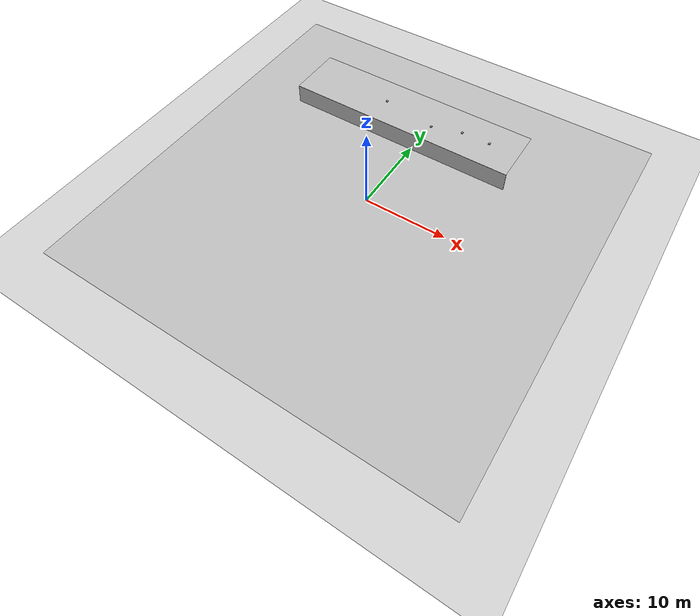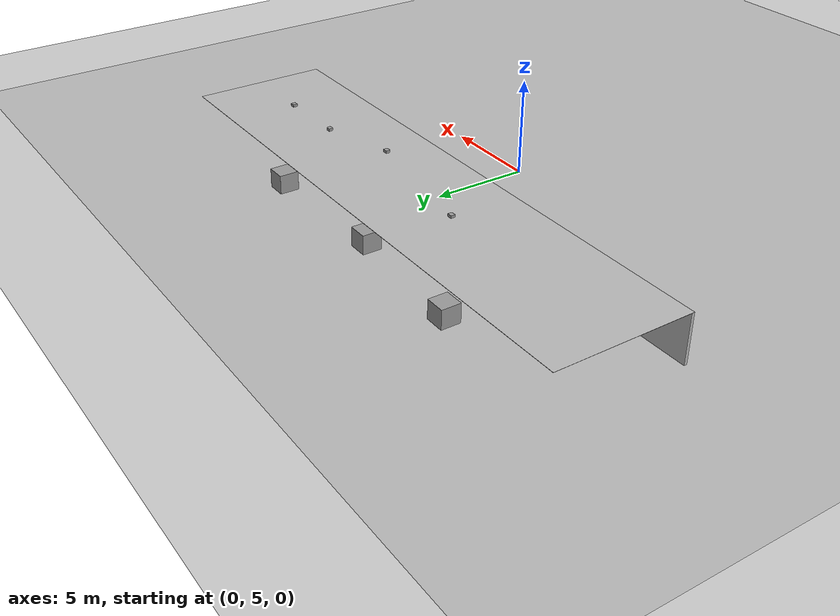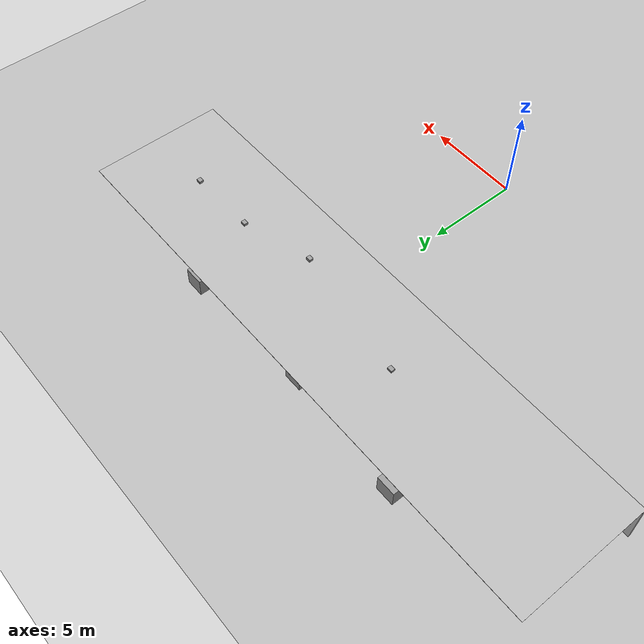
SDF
<sdf version='1.6'>
  <world name='default'>
    <scene>
      <shadows>0</shadows>
      <ambient>0.8 0.8 0.8 1</ambient>
      <background>1 1 1 1</background>
      <grid>0</grid>
      <origin_visual>0</origin_visual>
    </scene>
    <physics name='default_physics' default='0' type='ode'>
      <max_step_size>0.001</max_step_size>
      <real_time_factor>1</real_time_factor>
      <real_time_update_rate>500</real_time_update_rate>
    </physics>

   <model name='ground_plane'>
    <static>1</static>
    <link name='link'>
       <collision name='collision'>
           <geometry>
               <plane>
                   <normal>0 0 1</normal>
                   <size>50 50</size>
               </plane>
           </geometry>
           <surface>
            <friction>
                <ode>
                    <mu>100</mu>
                    <mu2>50</mu2>
                    </ode>
            </friction>
            <bounce/>
            <contact>
              <ode/>
            </contact>
          </surface>
         <max_contacts>10</max_contacts>
       </collision>
       <visual name='visual'>
           <cast_shadows>0</cast_shadows>
            <geometry>
               <plane>
                   <normal>0 0 1</normal>
                       <size>100 100</size>
              </plane>
           </geometry>
           <material>
           <script>
              <name>Gazebo/Grey</name>
              <uri>file://media/materials/scripts/gazebo.material</uri>
           </script>
           </material>
        </visual>
    <velocity_decay>
       <linear>0</linear>
       <angular>0</angular>
   </velocity_decay>
   <self_collide>0</self_collide>
   <kinematic>0</kinematic>
   <gravity>1</gravity>
 </link>
</model>

    <!-- A ground track -->

    <include>
      <uri>model://tunnel</uri>
      <pose>0 0 0.01 0 0 0</pose>
    </include>

    <!-- A tunnel -->

    <include>
      <uri>model://tunnel_29m</uri>
      <pose>-2.15 9.9 0 0 0 0</pose>
    </include>

    <gravity>0 0 -9.8</gravity>
    <magnetic_field>6e-06 2.3e-05 -4.2e-05</magnetic_field>
    <atmosphere type='adiabatic'/>
    <audio>
      <device>default</device>
    </audio>
    <wind/>
    <spherical_coordinates>
      <surface_model>EARTH_WGS84</surface_model>
      <latitude_deg>0</latitude_deg>
      <longitude_deg>0</longitude_deg>
      <elevation>0</elevation>
      <heading_deg>0</heading_deg>
    </spherical_coordinates>

    <model name='unit_box'>
      <pose frame=''>-12.2787 13.6775 0.5 0 -0 0</pose>
      <link name='link'>
        <inertial>
          <mass>1</mass>
          <inertia>
            <ixx>0.166667</ixx>
            <ixy>0</ixy>
            <ixz>0</ixz>
            <iyy>0.166667</iyy>
            <iyz>0</iyz>
            <izz>0.166667</izz>
          </inertia>
        </inertial>
        <collision name='collision'>
          <geometry>
            <box>
              <size>1 1 1</size>
            </box>
          </geometry>
          <max_contacts>10</max_contacts>
          <surface>
            <contact>
              <ode/>
            </contact>
            <bounce/>
            <friction>
              <torsional>
                <ode/>
              </torsional>
              <ode/>
            </friction>
          </surface>
        </collision>
        <visual name='visual'>
          <geometry>
            <box>
              <size>1 1 1</size>
            </box>
          </geometry>
          <material>
            <script>
              <name>Gazebo/Grey</name>
              <uri>file://media/materials/scripts/gazebo.material</uri>
            </script>
          </material>
        </visual>
        <self_collide>0</self_collide>
        <enable_wind>0</enable_wind>
        <kinematic>0</kinematic>
      </link>
    </model>
    <model name='unit_box_0'>
      <pose frame=''>-8.95766 16.0532 0.5 0 -0 0</pose>
      <link name='link'>
        <inertial>
          <mass>1</mass>
          <inertia>
            <ixx>0.166667</ixx>
            <ixy>0</ixy>
            <ixz>0</ixz>
            <iyy>0.166667</iyy>
            <iyz>0</iyz>
            <izz>0.166667</izz>
          </inertia>
        </inertial>
        <collision name='collision'>
          <geometry>
            <box>
              <size>1 1 1</size>
            </box>
          </geometry>
          <max_contacts>10</max_contacts>
          <surface>
            <contact>
              <ode/>
            </contact>
            <bounce/>
            <friction>
              <torsional>
                <ode/>
              </torsional>
              <ode/>
            </friction>
          </surface>
        </collision>
        <visual name='visual'>
          <geometry>
            <box>
              <size>1 1 1</size>
            </box>
          </geometry>
          <material>
            <script>
              <name>Gazebo/Grey</name>
              <uri>file://media/materials/scripts/gazebo.material</uri>
            </script>
          </material>
        </visual>
        <self_collide>0</self_collide>
        <enable_wind>0</enable_wind>
        <kinematic>0</kinematic>
      </link>
    </model>
    <model name='unit_box_1'>
      <pose frame=''>-2.14886 15.5807 0.5 0 -0 0</pose>
      <link name='link'>
        <inertial>
          <mass>1</mass>
          <inertia>
            <ixx>0.166667</ixx>
            <ixy>0</ixy>
            <ixz>0</ixz>
            <iyy>0.166667</iyy>
            <iyz>0</iyz>
            <izz>0.166667</izz>
          </inertia>
        </inertial>
        <collision name='collision'>
          <geometry>
            <box>
              <size>0.999999 1 1</size>
            </box>
          </geometry>
          <max_contacts>10</max_contacts>
          <surface>
            <contact>
              <ode/>
            </contact>
            <bounce/>
            <friction>
              <torsional>
                <ode/>
              </torsional>
              <ode/>
            </friction>
          </surface>
        </collision>
        <visual name='visual'>
          <geometry>
            <box>
              <size>0.999999 1 1</size>
            </box>
          </geometry>
          <material>
            <script>
              <name>Gazebo/Grey</name>
              <uri>file://media/materials/scripts/gazebo.material</uri>
            </script>
          </material>
        </visual>
        <self_collide>0</self_collide>
        <enable_wind>0</enable_wind>
        <kinematic>0</kinematic>
      </link>
    </model>
    <model name='unit_box_1_clone'>
      <pose frame=''>1.36064 12.2096 0.5 0 -0 0</pose>
      <link name='link'>
        <inertial>
          <mass>1</mass>
          <inertia>
            <ixx>0.166667</ixx>
            <ixy>0</ixy>
            <ixz>0</ixz>
            <iyy>0.166667</iyy>
            <iyz>0</iyz>
            <izz>0.166667</izz>
          </inertia>
        </inertial>
        <collision name='collision'>
          <geometry>
            <box>
              <size>0.259018 0.2209 4.29071</size>
            </box>
          </geometry>
          <max_contacts>10</max_contacts>
          <surface>
            <contact>
              <ode/>
            </contact>
            <bounce/>
            <friction>
              <torsional>
                <ode/>
              </torsional>
              <ode/>
            </friction>
          </surface>
        </collision>
        <visual name='visual'>
          <geometry>
            <box>
              <size>0.259018 0.2209 4.29071</size>
            </box>
          </geometry>
          <material>
            <script>
              <name>Gazebo/Grey</name>
              <uri>file://media/materials/scripts/gazebo.material</uri>
            </script>
          </material>
        </visual>
        <self_collide>0</self_collide>
        <enable_wind>0</enable_wind>
        <kinematic>0</kinematic>
      </link>
    </model>
    <model name='unit_box_1_clone_0'>
      <pose frame=''>5.01132 13.2495 0.5 0 -0 0</pose>
      <link name='link'>
        <inertial>
          <mass>1</mass>
          <inertia>
            <ixx>0.166667</ixx>
            <ixy>0</ixy>
            <ixz>0</ixz>
            <iyy>0.166667</iyy>
            <iyz>0</iyz>
            <izz>0.166667</izz>
          </inertia>
        </inertial>
        <collision name='collision'>
          <geometry>
            <box>
              <size>0.259018 0.2209 4.29071</size>
            </box>
          </geometry>
          <max_contacts>10</max_contacts>
          <surface>
            <contact>
              <ode/>
            </contact>
            <bounce/>
            <friction>
              <torsional>
                <ode/>
              </torsional>
              <ode/>
            </friction>
          </surface>
        </collision>
        <visual name='visual'>
          <geometry>
            <box>
              <size>0.259018 0.2209 4.29071</size>
            </box>
          </geometry>
          <material>
            <script>
              <name>Gazebo/Grey</name>
              <uri>file://media/materials/scripts/gazebo.material</uri>
            </script>
          </material>
        </visual>
        <self_collide>0</self_collide>
        <enable_wind>0</enable_wind>
        <kinematic>0</kinematic>
      </link>
    </model>
    <model name='unit_box_1_clone_1'>
      <pose frame=''>8.57042 13.3155 0.5 0 -0 0</pose>
      <link name='link'>
        <inertial>
          <mass>1</mass>
          <inertia>
            <ixx>0.166667</ixx>
            <ixy>0</ixy>
            <ixz>0</ixz>
            <iyy>0.166667</iyy>
            <iyz>0</iyz>
            <izz>0.166667</izz>
          </inertia>
        </inertial>
        <collision name='collision'>
          <geometry>
            <box>
              <size>0.259018 0.2209 4.29071</size>
            </box>
          </geometry>
          <max_contacts>10</max_contacts>
          <surface>
            <contact>
              <ode/>
            </contact>
            <bounce/>
            <friction>
              <torsional>
                <ode/>
              </torsional>
              <ode/>
            </friction>
          </surface>
        </collision>
        <visual name='visual'>
          <geometry>
            <box>
              <size>0.259018 0.2209 4.29071</size>
            </box>
          </geometry>
          <material>
            <script>
              <name>Gazebo/Grey</name>
              <uri>file://media/materials/scripts/gazebo.material</uri>
            </script>
          </material>
        </visual>
        <self_collide>0</self_collide>
        <enable_wind>0</enable_wind>
        <kinematic>0</kinematic>
      </link>
    </model>
    <model name='unit_box_clone'>
      <pose frame=''>5.02337 15.9208 0.5 0 -0 0</pose>
      <link name='link'>
        <inertial>
          <mass>1</mass>
          <inertia>
            <ixx>0.166667</ixx>
            <ixy>0</ixy>
            <ixz>0</ixz>
            <iyy>0.166667</iyy>
            <iyz>0</iyz>
            <izz>0.166667</izz>
          </inertia>
        </inertial>
        <collision name='collision'>
          <geometry>
            <box>
              <size>1 1 1</size>
            </box>
          </geometry>
          <max_contacts>10</max_contacts>
          <surface>
            <contact>
              <ode/>
            </contact>
            <bounce/>
            <friction>
              <torsional>
                <ode/>
              </torsional>
              <ode/>
            </friction>
          </surface>
        </collision>
        <visual name='visual'>
          <geometry>
            <box>
              <size>1 1 1</size>
            </box>
          </geometry>
          <material>
            <script>
              <name>Gazebo/Grey</name>
              <uri>file://media/materials/scripts/gazebo.material</uri>
            </script>
          </material>
        </visual>
        <self_collide>0</self_collide>
        <enable_wind>0</enable_wind>
        <kinematic>0</kinematic>
      </link>
    </model>
    <model name='unit_box_1_clone_2'>
      <pose frame=''>-5.52952 13.3034 0.5 0 -0 0</pose>
      <link name='link'>
        <inertial>
          <mass>1</mass>
          <inertia>
            <ixx>0.166667</ixx>
            <ixy>0</ixy>
            <ixz>0</ixz>
            <iyy>0.166667</iyy>
            <iyz>0</iyz>
            <izz>0.166667</izz>
          </inertia>
        </inertial>
        <collision name='collision'>
          <geometry>
            <box>
              <size>0.259018 0.2209 4.29071</size>
            </box>
          </geometry>
          <max_contacts>10</max_contacts>
          <surface>
            <contact>
              <ode/>
            </contact>
            <bounce/>
            <friction>
              <torsional>
                <ode/>
              </torsional>
              <ode/>
            </friction>
          </surface>
        </collision>
        <visual name='visual'>
          <geometry>
            <box>
              <size>0.259018 0.2209 4.29071</size>
            </box>
          </geometry>
          <material>
            <script>
              <name>Gazebo/Grey</name>
              <uri>file://media/materials/scripts/gazebo.material</uri>
            </script>
          </material>
        </visual>
        <self_collide>0</self_collide>
        <enable_wind>0</enable_wind>
        <kinematic>0</kinematic>
      </link>
    </model>
  </world>
</sdf>

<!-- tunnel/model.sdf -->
<sdf version="1.5">
  <model name="tunnel">
    <static>true</static>
    <link name="link">

      <visual name="visual">
        <geometry>
          <mesh>
            <uri>model://tunnel/meshes/traffic_markers_v2.dae</uri>

          </mesh>
        </geometry>
      </visual>

    </link>
  </model>
</sdf>

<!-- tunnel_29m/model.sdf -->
<sdf version="1.5">
  <model name="tunnel_29m">
    <static>true</static>
    <link name="link">
      <collision name="wall_01">
        <pose>-0.0 0 2.14 0 0 0</pose>
        <geometry>
          <box>
            <size>12.15 0.31 4.28</size>
          </box>
        </geometry>
      </collision>
      <visual name="visual">
        <geometry>
          <mesh>
            <uri>model://tunnel_29m/meshes/wall_29m.dae</uri>
          </mesh>
        </geometry>
      </visual>

       <visual name='visual_roof_0'>
        <pose>0 3.425 2.505 0 0 0</pose>

        <geometry>
          <box>
            <size>29 7 0.01</size>
          </box>
        </geometry>
        <material>
          <script>
            <uri>model://tunnel_29m/materials/scripts</uri>
            <uri>model://tunnel_29m/materials/textures</uri>
            <name>tunnel_29m/Roof</name>
          </script>
        </material>
      </visual>
    </link>
  </model>
</sdf>
